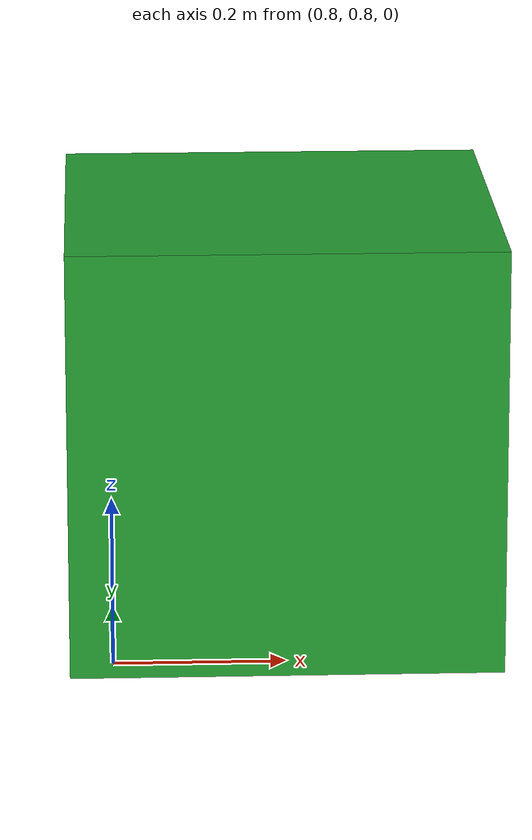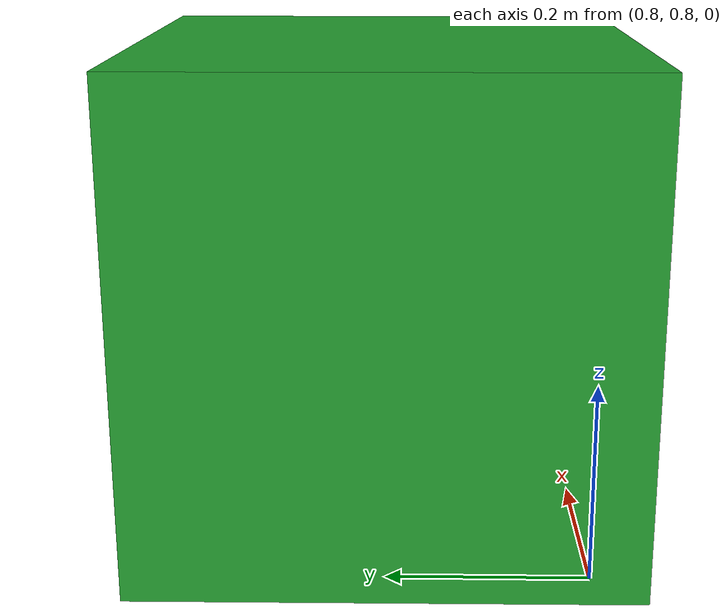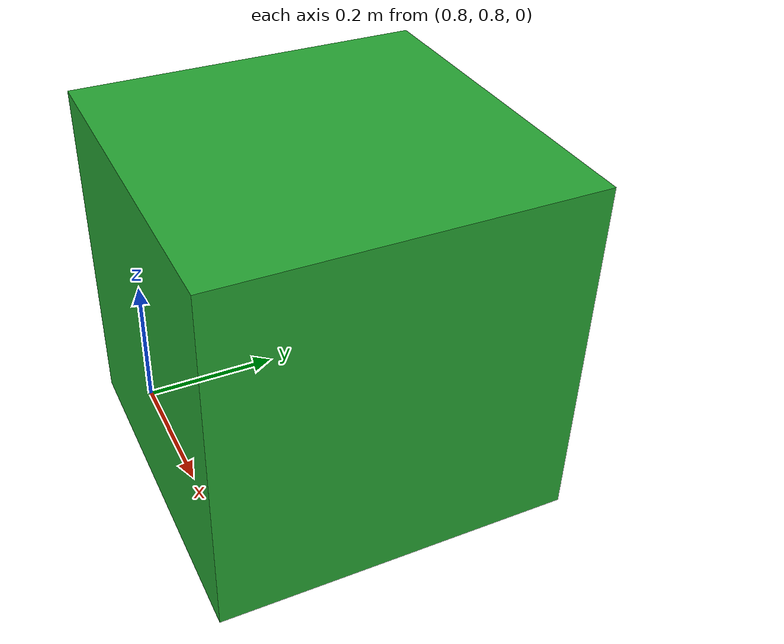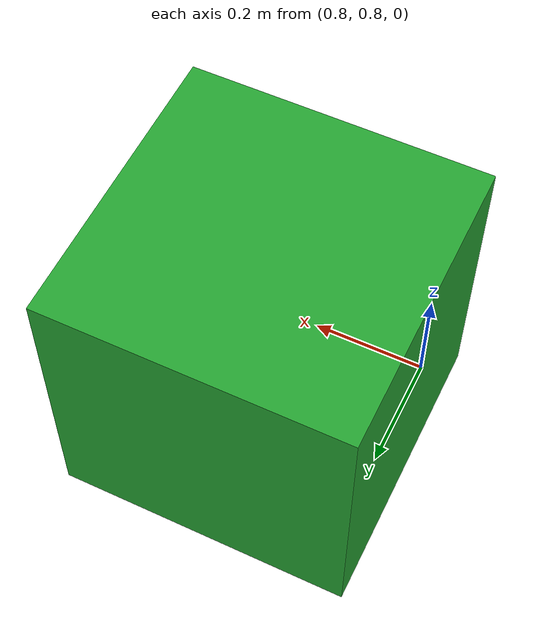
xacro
<?xml version="1.0"?>
<robot xmlns:xacro="http://www.ros.org/wiki/xacro">
    <link name="greenbox2">
    </link>

    <joint name="greenbox_joint2" type="fixed">
        <parent link="greenbox2"/>
        <child link="greenbox_link2"/>
        <origin xyz="1 1 0.25"/>
    </joint>

    <link name="greenbox_link2">
        <visual>
            <origin xyz="0 0 0"/>
            <geometry>
                <box size="0.5 0.5 0.5"/>
            </geometry>
            <material name="green"/>
        </visual>
        <collision>
            <origin xyz="0 0 0" rpy="0 0 0"/>
            <geometry>
                <box size="0.5 0.5 0.5"/>
            </geometry>
        </collision>
        <xacro:inertial_box mass="1" x="0" y="0" z="0">
            <origin xyz="1 1 0.25" rpy="0 0 0"/>
        </xacro:inertial_box>
    </link>
</robot>
